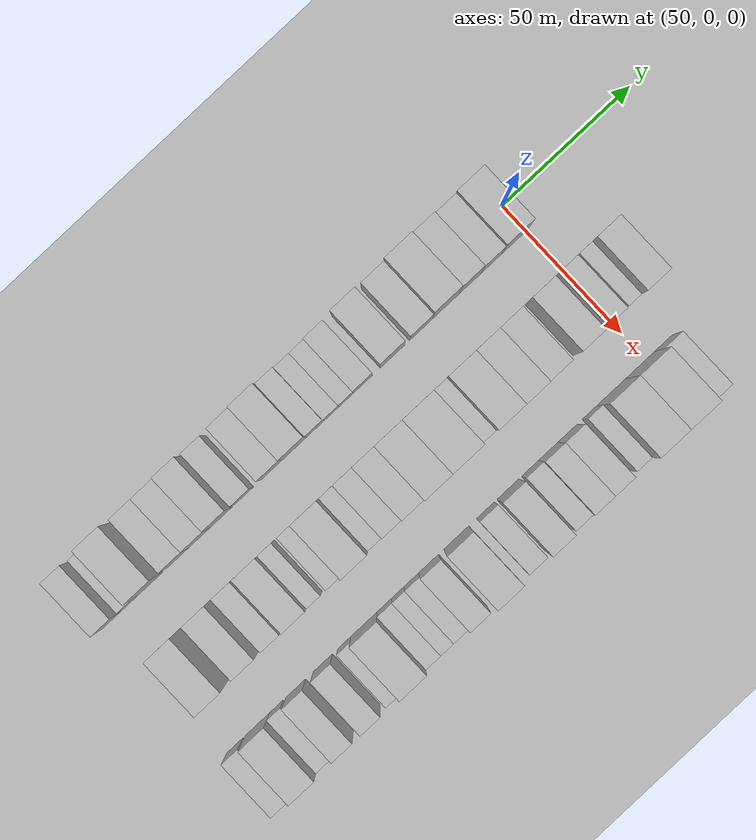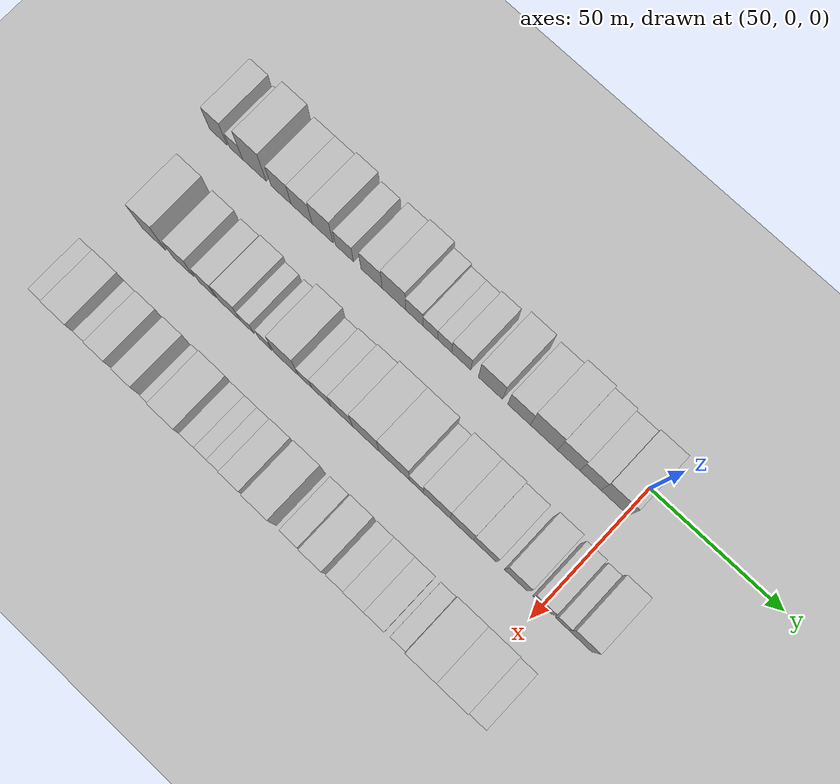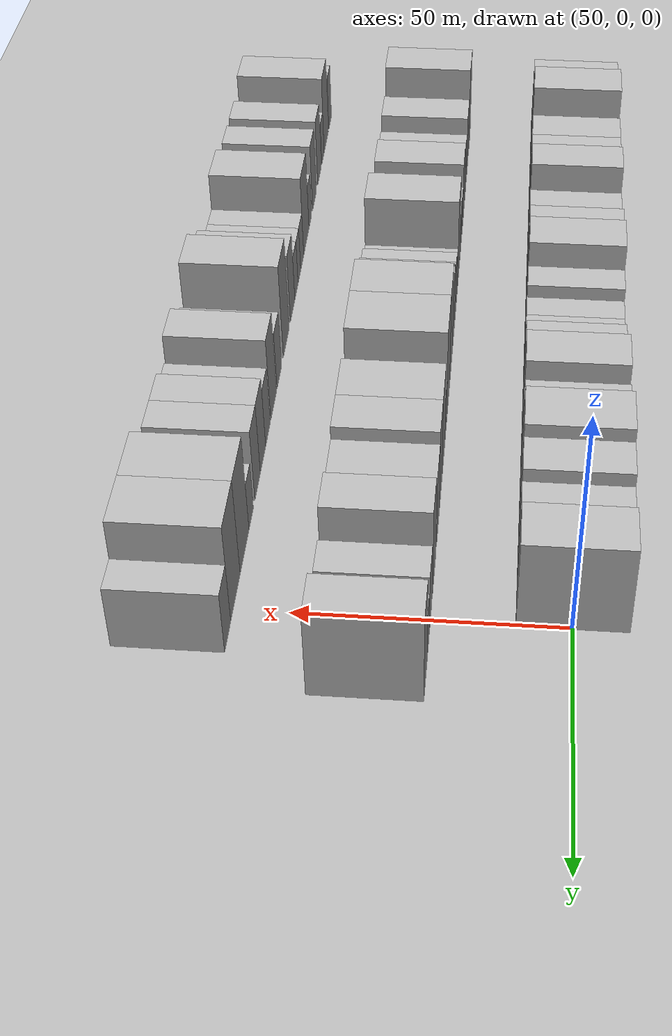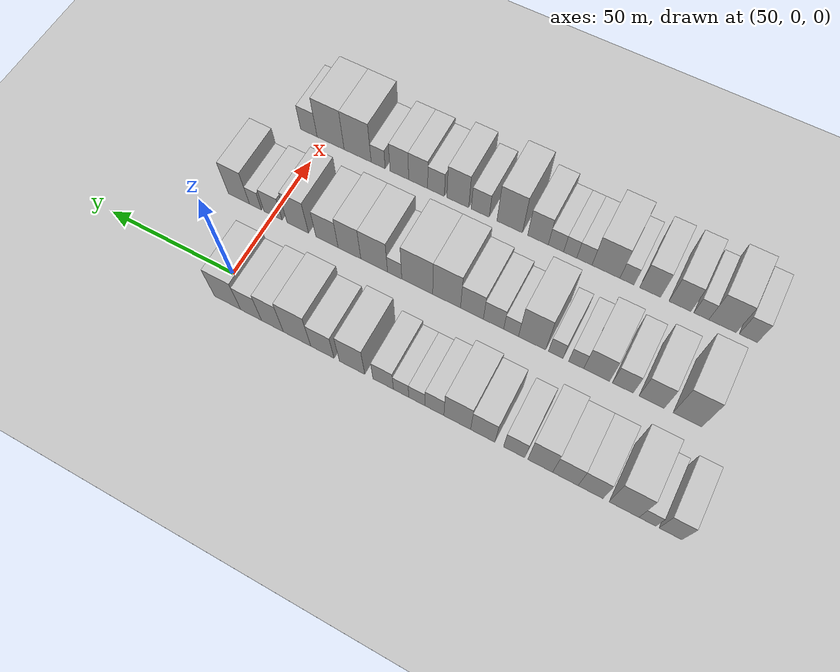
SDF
<sdf version="1.6">
 <world name="default">
  <include><name>ground_plane_1</name><uri>model://HANNAS_ground_plane</uri></include>
  <include>
   <name>ground_plane_2</name>
   <uri>model://HANNAS_ground_plane</uri>
   <pose>100 0 0  0 0 0</pose>
  </include>
  <model name="building_21">
   <static>1</static>
   <pose>50.0000 -161.7235 0 0.000000 0.000000 0.000000</pose>
   <link name="link">
    <pose>0 0 9.00 0 0 0</pose>
    <collision name="collision"><geometry><box><size>20.0000 7.2469 18.0000</size></box></geometry></collision>
    <visual name="visual">
     <cast_shadows>0</cast_shadows>
     <geometry><box><size>20.0000 7.2469 18.0000</size></box></geometry>
     <material>
      <script>
       <uri>model://HANNAS_wall/materials/scripts</uri>
       <uri>model://HANNAS_wall/materials/textures</uri>
       <name>vrc/HANNAS_wall</name>
      </script>
     </material>
    </visual>
   </link>
  </model>
  <model name="building_22">
   <static>1</static>
   <pose>50.0000 -154.3871 0 0.000000 0.000000 0.000000</pose>
   <link name="link">
    <pose>0 0 6.00 0 0 0</pose>
    <collision name="collision"><geometry><box><size>20.0000 5.4259 12.0000</size></box></geometry></collision>
    <visual name="visual">
     <cast_shadows>0</cast_shadows>
     <geometry><box><size>20.0000 5.4259 12.0000</size></box></geometry>
     <material>
      <script>
       <uri>model://HANNAS_wall/materials/scripts</uri>
       <uri>model://HANNAS_wall/materials/textures</uri>
       <name>vrc/HANNAS_wall</name>
      </script>
     </material>
    </visual>
   </link>
  </model>
  <model name="building_23">
   <static>1</static>
   <pose>50.0000 -146.8042 0 0.000000 0.000000 0.000000</pose>
   <link name="link">
    <pose>0 0 12.00 0 0 0</pose>
    <collision name="collision"><geometry><box><size>20.0000 9.7397 24.0000</size></box></geometry></collision>
    <visual name="visual">
     <cast_shadows>0</cast_shadows>
     <geometry><box><size>20.0000 9.7397 24.0000</size></box></geometry>
     <material>
      <script>
       <uri>model://HANNAS_wall/materials/scripts</uri>
       <uri>model://HANNAS_wall/materials/textures</uri>
       <name>vrc/HANNAS_wall</name>
      </script>
     </material>
    </visual>
   </link>
  </model>
  <model name="building_24">
   <static>1</static>
   <pose>50.0000 -135.8123 0 0.000000 0.000000 0.000000</pose>
   <link name="link">
    <pose>0 0 9.00 0 0 0</pose>
    <collision name="collision"><geometry><box><size>20.0000 8.2442 18.0000</size></box></geometry></collision>
    <visual name="visual">
     <cast_shadows>0</cast_shadows>
     <geometry><box><size>20.0000 8.2442 18.0000</size></box></geometry>
     <material>
      <script>
       <uri>model://HANNAS_wall/materials/scripts</uri>
       <uri>model://HANNAS_wall/materials/textures</uri>
       <name>vrc/HANNAS_wall</name>
      </script>
     </material>
    </visual>
   </link>
  </model>
  <model name="building_25">
   <static>1</static>
   <pose>50.0000 -127.4321 0 0.000000 0.000000 0.000000</pose>
   <link name="link">
    <pose>0 0 9.00 0 0 0</pose>
    <collision name="collision"><geometry><box><size>20.0000 8.5163 18.0000</size></box></geometry></collision>
    <visual name="visual">
     <cast_shadows>0</cast_shadows>
     <geometry><box><size>20.0000 8.5163 18.0000</size></box></geometry>
     <material>
      <script>
       <uri>model://HANNAS_wall/materials/scripts</uri>
       <uri>model://HANNAS_wall/materials/textures</uri>
       <name>vrc/HANNAS_wall</name>
      </script>
     </material>
    </visual>
   </link>
  </model>
  <model name="building_26">
   <static>1</static>
   <pose>50.0000 -118.9645 0 0.000000 0.000000 0.000000</pose>
   <link name="link">
    <pose>0 0 10.50 0 0 0</pose>
    <collision name="collision"><geometry><box><size>20.0000 8.4188 21.0000</size></box></geometry></collision>
    <visual name="visual">
     <cast_shadows>0</cast_shadows>
     <geometry><box><size>20.0000 8.4188 21.0000</size></box></geometry>
     <material>
      <script>
       <uri>model://HANNAS_wall/materials/scripts</uri>
       <uri>model://HANNAS_wall/materials/textures</uri>
       <name>vrc/HANNAS_wall</name>
      </script>
     </material>
    </visual>
   </link>
  </model>
  <model name="building_27">
   <static>1</static>
   <pose>50.0000 -110.1095 0 0.000000 0.000000 0.000000</pose>
   <link name="link">
    <pose>0 0 7.50 0 0 0</pose>
    <collision name="collision"><geometry><box><size>20.0000 7.2914 15.0000</size></box></geometry></collision>
    <visual name="visual">
     <cast_shadows>0</cast_shadows>
     <geometry><box><size>20.0000 7.2914 15.0000</size></box></geometry>
     <material>
      <script>
       <uri>model://HANNAS_wall/materials/scripts</uri>
       <uri>model://HANNAS_wall/materials/textures</uri>
       <name>vrc/HANNAS_wall</name>
      </script>
     </material>
    </visual>
   </link>
  </model>
  <model name="building_28">
   <static>1</static>
   <pose>50.0000 -99.2491 0 0.000000 0.000000 0.000000</pose>
   <link name="link">
    <pose>0 0 9.00 0 0 0</pose>
    <collision name="collision"><geometry><box><size>20.0000 8.4293 18.0000</size></box></geometry></collision>
    <visual name="visual">
     <cast_shadows>0</cast_shadows>
     <geometry><box><size>20.0000 8.4293 18.0000</size></box></geometry>
     <material>
      <script>
       <uri>model://HANNAS_wall/materials/scripts</uri>
       <uri>model://HANNAS_wall/materials/textures</uri>
       <name>vrc/HANNAS_wall</name>
      </script>
     </material>
    </visual>
   </link>
  </model>
  <model name="building_29">
   <static>1</static>
   <pose>50.0000 -90.3243 0 0.000000 0.000000 0.000000</pose>
   <link name="link">
    <pose>0 0 10.50 0 0 0</pose>
    <collision name="collision"><geometry><box><size>20.0000 9.4204 21.0000</size></box></geometry></collision>
    <visual name="visual">
     <cast_shadows>0</cast_shadows>
     <geometry><box><size>20.0000 9.4204 21.0000</size></box></geometry>
     <material>
      <script>
       <uri>model://HANNAS_wall/materials/scripts</uri>
       <uri>model://HANNAS_wall/materials/textures</uri>
       <name>vrc/HANNAS_wall</name>
      </script>
     </material>
    </visual>
   </link>
  </model>
  <model name="building_30">
   <static>1</static>
   <pose>50.0000 -82.2575 0 0.000000 0.000000 0.000000</pose>
   <link name="link">
    <pose>0 0 7.50 0 0 0</pose>
    <collision name="collision"><geometry><box><size>20.0000 6.7132 15.0000</size></box></geometry></collision>
    <visual name="visual">
     <cast_shadows>0</cast_shadows>
     <geometry><box><size>20.0000 6.7132 15.0000</size></box></geometry>
     <material>
      <script>
       <uri>model://HANNAS_wall/materials/scripts</uri>
       <uri>model://HANNAS_wall/materials/textures</uri>
       <name>vrc/HANNAS_wall</name>
      </script>
     </material>
    </visual>
   </link>
  </model>
  <model name="building_31">
   <static>1</static>
   <pose>50.0000 -75.9709 0 0.000000 0.000000 0.000000</pose>
   <link name="link">
    <pose>0 0 6.00 0 0 0</pose>
    <collision name="collision"><geometry><box><size>20.0000 5.8601 12.0000</size></box></geometry></collision>
    <visual name="visual">
     <cast_shadows>0</cast_shadows>
     <geometry><box><size>20.0000 5.8601 12.0000</size></box></geometry>
     <material>
      <script>
       <uri>model://HANNAS_wall/materials/scripts</uri>
       <uri>model://HANNAS_wall/materials/textures</uri>
       <name>vrc/HANNAS_wall</name>
      </script>
     </material>
    </visual>
   </link>
  </model>
  <model name="building_32">
   <static>1</static>
   <pose>50.0000 -70.2673 0 0.000000 0.000000 0.000000</pose>
   <link name="link">
    <pose>0 0 6.00 0 0 0</pose>
    <collision name="collision"><geometry><box><size>20.0000 5.5470 12.0000</size></box></geometry></collision>
    <visual name="visual">
     <cast_shadows>0</cast_shadows>
     <geometry><box><size>20.0000 5.5470 12.0000</size></box></geometry>
     <material>
      <script>
       <uri>model://HANNAS_wall/materials/scripts</uri>
       <uri>model://HANNAS_wall/materials/textures</uri>
       <name>vrc/HANNAS_wall</name>
      </script>
     </material>
    </visual>
   </link>
  </model>
  <model name="building_33">
   <static>1</static>
   <pose>50.0000 -63.7525 0 0.000000 0.000000 0.000000</pose>
   <link name="link">
    <pose>0 0 7.50 0 0 0</pose>
    <collision name="collision"><geometry><box><size>20.0000 7.4826 15.0000</size></box></geometry></collision>
    <visual name="visual">
     <cast_shadows>0</cast_shadows>
     <geometry><box><size>20.0000 7.4826 15.0000</size></box></geometry>
     <material>
      <script>
       <uri>model://HANNAS_wall/materials/scripts</uri>
       <uri>model://HANNAS_wall/materials/textures</uri>
       <name>vrc/HANNAS_wall</name>
      </script>
     </material>
    </visual>
   </link>
  </model>
  <model name="building_34">
   <static>1</static>
   <pose>50.0000 -52.3097 0 0.000000 0.000000 0.000000</pose>
   <link name="link">
    <pose>0 0 10.50 0 0 0</pose>
    <collision name="collision"><geometry><box><size>20.0000 9.4031 21.0000</size></box></geometry></collision>
    <visual name="visual">
     <cast_shadows>0</cast_shadows>
     <geometry><box><size>20.0000 9.4031 21.0000</size></box></geometry>
     <material>
      <script>
       <uri>model://HANNAS_wall/materials/scripts</uri>
       <uri>model://HANNAS_wall/materials/textures</uri>
       <name>vrc/HANNAS_wall</name>
      </script>
     </material>
    </visual>
   </link>
  </model>
  <model name="building_35">
   <static>1</static>
   <pose>50.0000 -41.2139 0 0.000000 0.000000 0.000000</pose>
   <link name="link">
    <pose>0 0 9.00 0 0 0</pose>
    <collision name="collision"><geometry><box><size>20.0000 8.7885 18.0000</size></box></geometry></collision>
    <visual name="visual">
     <cast_shadows>0</cast_shadows>
     <geometry><box><size>20.0000 8.7885 18.0000</size></box></geometry>
     <material>
      <script>
       <uri>model://HANNAS_wall/materials/scripts</uri>
       <uri>model://HANNAS_wall/materials/textures</uri>
       <name>vrc/HANNAS_wall</name>
      </script>
     </material>
    </visual>
   </link>
  </model>
  <model name="building_36">
   <static>1</static>
   <pose>50.0000 -31.5772 0 0.000000 0.000000 0.000000</pose>
   <link name="link">
    <pose>0 0 12.00 0 0 0</pose>
    <collision name="collision"><geometry><box><size>20.0000 10.4849 24.0000</size></box></geometry></collision>
    <visual name="visual">
     <cast_shadows>0</cast_shadows>
     <geometry><box><size>20.0000 10.4849 24.0000</size></box></geometry>
     <material>
      <script>
       <uri>model://HANNAS_wall/materials/scripts</uri>
       <uri>model://HANNAS_wall/materials/textures</uri>
       <name>vrc/HANNAS_wall</name>
      </script>
     </material>
    </visual>
   </link>
  </model>
  <model name="building_37">
   <static>1</static>
   <pose>50.0000 -22.1295 0 0.000000 0.000000 0.000000</pose>
   <link name="link">
    <pose>0 0 10.50 0 0 0</pose>
    <collision name="collision"><geometry><box><size>20.0000 8.4103 21.0000</size></box></geometry></collision>
    <visual name="visual">
     <cast_shadows>0</cast_shadows>
     <geometry><box><size>20.0000 8.4103 21.0000</size></box></geometry>
     <material>
      <script>
       <uri>model://HANNAS_wall/materials/scripts</uri>
       <uri>model://HANNAS_wall/materials/textures</uri>
       <name>vrc/HANNAS_wall</name>
      </script>
     </material>
    </visual>
   </link>
  </model>
  <model name="building_38">
   <static>1</static>
   <pose>50.0000 -13.8423 0 0.000000 0.000000 0.000000</pose>
   <link name="link">
    <pose>0 0 9.00 0 0 0</pose>
    <collision name="collision"><geometry><box><size>20.0000 8.1641 18.0000</size></box></geometry></collision>
    <visual name="visual">
     <cast_shadows>0</cast_shadows>
     <geometry><box><size>20.0000 8.1641 18.0000</size></box></geometry>
     <material>
      <script>
       <uri>model://HANNAS_wall/materials/scripts</uri>
       <uri>model://HANNAS_wall/materials/textures</uri>
       <name>vrc/HANNAS_wall</name>
      </script>
     </material>
    </visual>
   </link>
  </model>
  <model name="building_39">
   <static>1</static>
   <pose>50.0000 -4.5751 0 0.000000 0.000000 0.000000</pose>
   <link name="link">
    <pose>0 0 10.50 0 0 0</pose>
    <collision name="collision"><geometry><box><size>20.0000 10.3705 21.0000</size></box></geometry></collision>
    <visual name="visual">
     <cast_shadows>0</cast_shadows>
     <geometry><box><size>20.0000 10.3705 21.0000</size></box></geometry>
     <material>
      <script>
       <uri>model://HANNAS_wall/materials/scripts</uri>
       <uri>model://HANNAS_wall/materials/textures</uri>
       <name>vrc/HANNAS_wall</name>
      </script>
     </material>
    </visual>
   </link>
  </model>
  <model name="building_101">
   <static>1</static>
   <pose>85.0000 -153.3951 0 0.000000 0.000000 0.000000</pose>
   <link name="link">
    <pose>0 0 12.00 0 0 0</pose>
    <collision name="collision"><geometry><box><size>20.0000 9.6133 24.0000</size></box></geometry></collision>
    <visual name="visual">
     <cast_shadows>0</cast_shadows>
     <geometry><box><size>20.0000 9.6133 24.0000</size></box></geometry>
     <material>
      <script>
       <uri>model://HANNAS_wall/materials/scripts</uri>
       <uri>model://HANNAS_wall/materials/textures</uri>
       <name>vrc/HANNAS_wall</name>
      </script>
     </material>
    </visual>
   </link>
  </model>
  <model name="building_102">
   <static>1</static>
   <pose>85.0000 -141.3218 0 0.000000 0.000000 0.000000</pose>
   <link name="link">
    <pose>0 0 9.00 0 0 0</pose>
    <collision name="collision"><geometry><box><size>20.0000 8.5334 18.0000</size></box></geometry></collision>
    <visual name="visual">
     <cast_shadows>0</cast_shadows>
     <geometry><box><size>20.0000 8.5334 18.0000</size></box></geometry>
     <material>
      <script>
       <uri>model://HANNAS_wall/materials/scripts</uri>
       <uri>model://HANNAS_wall/materials/textures</uri>
       <name>vrc/HANNAS_wall</name>
      </script>
     </material>
    </visual>
   </link>
  </model>
  <model name="building_103">
   <static>1</static>
   <pose>85.0000 -131.4717 0 0.000000 0.000000 0.000000</pose>
   <link name="link">
    <pose>0 0 7.50 0 0 0</pose>
    <collision name="collision"><geometry><box><size>20.0000 7.1668 15.0000</size></box></geometry></collision>
    <visual name="visual">
     <cast_shadows>0</cast_shadows>
     <geometry><box><size>20.0000 7.1668 15.0000</size></box></geometry>
     <material>
      <script>
       <uri>model://HANNAS_wall/materials/scripts</uri>
       <uri>model://HANNAS_wall/materials/textures</uri>
       <name>vrc/HANNAS_wall</name>
      </script>
     </material>
    </visual>
   </link>
  </model>
  <model name="building_104">
   <static>1</static>
   <pose>85.0000 -122.4098 0 0.000000 0.000000 0.000000</pose>
   <link name="link">
    <pose>0 0 9.00 0 0 0</pose>
    <collision name="collision"><geometry><box><size>20.0000 8.9569 18.0000</size></box></geometry></collision>
    <visual name="visual">
     <cast_shadows>0</cast_shadows>
     <geometry><box><size>20.0000 8.9569 18.0000</size></box></geometry>
     <material>
      <script>
       <uri>model://HANNAS_wall/materials/scripts</uri>
       <uri>model://HANNAS_wall/materials/textures</uri>
       <name>vrc/HANNAS_wall</name>
      </script>
     </material>
    </visual>
   </link>
  </model>
  <model name="building_105">
   <static>1</static>
   <pose>85.0000 -115.2569 0 0.000000 0.000000 0.000000</pose>
   <link name="link">
    <pose>0 0 6.00 0 0 0</pose>
    <collision name="collision"><geometry><box><size>20.0000 5.3489 12.0000</size></box></geometry></collision>
    <visual name="visual">
     <cast_shadows>0</cast_shadows>
     <geometry><box><size>20.0000 5.3489 12.0000</size></box></geometry>
     <material>
      <script>
       <uri>model://HANNAS_wall/materials/scripts</uri>
       <uri>model://HANNAS_wall/materials/textures</uri>
       <name>vrc/HANNAS_wall</name>
      </script>
     </material>
    </visual>
   </link>
  </model>
  <model name="building_106">
   <static>1</static>
   <pose>85.0000 -107.9996 0 0.000000 0.000000 0.000000</pose>
   <link name="link">
    <pose>0 0 6.00 0 0 0</pose>
    <collision name="collision"><geometry><box><size>20.0000 5.1656 12.0000</size></box></geometry></collision>
    <visual name="visual">
     <cast_shadows>0</cast_shadows>
     <geometry><box><size>20.0000 5.1656 12.0000</size></box></geometry>
     <material>
      <script>
       <uri>model://HANNAS_wall/materials/scripts</uri>
       <uri>model://HANNAS_wall/materials/textures</uri>
       <name>vrc/HANNAS_wall</name>
      </script>
     </material>
    </visual>
   </link>
  </model>
  <model name="building_107">
   <static>1</static>
   <pose>85.0000 -99.5205 0 0.000000 0.000000 0.000000</pose>
   <link name="link">
    <pose>0 0 12.00 0 0 0</pose>
    <collision name="collision"><geometry><box><size>20.0000 9.7926 24.0000</size></box></geometry></collision>
    <visual name="visual">
     <cast_shadows>0</cast_shadows>
     <geometry><box><size>20.0000 9.7926 24.0000</size></box></geometry>
     <material>
      <script>
       <uri>model://HANNAS_wall/materials/scripts</uri>
       <uri>model://HANNAS_wall/materials/textures</uri>
       <name>vrc/HANNAS_wall</name>
      </script>
     </material>
    </visual>
   </link>
  </model>
  <model name="building_108">
   <static>1</static>
   <pose>85.0000 -91.9292 0 0.000000 0.000000 0.000000</pose>
   <link name="link">
    <pose>0 0 6.00 0 0 0</pose>
    <collision name="collision"><geometry><box><size>20.0000 5.3900 12.0000</size></box></geometry></collision>
    <visual name="visual">
     <cast_shadows>0</cast_shadows>
     <geometry><box><size>20.0000 5.3900 12.0000</size></box></geometry>
     <material>
      <script>
       <uri>model://HANNAS_wall/materials/scripts</uri>
       <uri>model://HANNAS_wall/materials/textures</uri>
       <name>vrc/HANNAS_wall</name>
      </script>
     </material>
    </visual>
   </link>
  </model>
  <model name="building_109">
   <static>1</static>
   <pose>85.0000 -85.5301 0 0.000000 0.000000 0.000000</pose>
   <link name="link">
    <pose>0 0 7.50 0 0 0</pose>
    <collision name="collision"><geometry><box><size>20.0000 7.4082 15.0000</size></box></geometry></collision>
    <visual name="visual">
     <cast_shadows>0</cast_shadows>
     <geometry><box><size>20.0000 7.4082 15.0000</size></box></geometry>
     <material>
      <script>
       <uri>model://HANNAS_wall/materials/scripts</uri>
       <uri>model://HANNAS_wall/materials/textures</uri>
       <name>vrc/HANNAS_wall</name>
      </script>
     </material>
    </visual>
   </link>
  </model>
  <model name="building_110">
   <static>1</static>
   <pose>85.0000 -77.5887 0 0.000000 0.000000 0.000000</pose>
   <link name="link">
    <pose>0 0 9.00 0 0 0</pose>
    <collision name="collision"><geometry><box><size>20.0000 8.4746 18.0000</size></box></geometry></collision>
    <visual name="visual">
     <cast_shadows>0</cast_shadows>
     <geometry><box><size>20.0000 8.4746 18.0000</size></box></geometry>
     <material>
      <script>
       <uri>model://HANNAS_wall/materials/scripts</uri>
       <uri>model://HANNAS_wall/materials/textures</uri>
       <name>vrc/HANNAS_wall</name>
      </script>
     </material>
    </visual>
   </link>
  </model>
  <model name="building_111">
   <static>1</static>
   <pose>85.0000 -68.1394 0 0.000000 0.000000 0.000000</pose>
   <link name="link">
    <pose>0 0 12.00 0 0 0</pose>
    <collision name="collision"><geometry><box><size>20.0000 10.4241 24.0000</size></box></geometry></collision>
    <visual name="visual">
     <cast_shadows>0</cast_shadows>
     <geometry><box><size>20.0000 10.4241 24.0000</size></box></geometry>
     <material>
      <script>
       <uri>model://HANNAS_wall/materials/scripts</uri>
       <uri>model://HANNAS_wall/materials/textures</uri>
       <name>vrc/HANNAS_wall</name>
      </script>
     </material>
    </visual>
   </link>
  </model>
  <model name="building_112">
   <static>1</static>
   <pose>85.0000 -57.0421 0 0.000000 0.000000 0.000000</pose>
   <link name="link">
    <pose>0 0 12.00 0 0 0</pose>
    <collision name="collision"><geometry><box><size>20.0000 11.7704 24.0000</size></box></geometry></collision>
    <visual name="visual">
     <cast_shadows>0</cast_shadows>
     <geometry><box><size>20.0000 11.7704 24.0000</size></box></geometry>
     <material>
      <script>
       <uri>model://HANNAS_wall/materials/scripts</uri>
       <uri>model://HANNAS_wall/materials/textures</uri>
       <name>vrc/HANNAS_wall</name>
      </script>
     </material>
    </visual>
   </link>
  </model>
  <model name="building_113">
   <static>1</static>
   <pose>85.0000 -48.4250 0 0.000000 0.000000 0.000000</pose>
   <link name="link">
    <pose>0 0 6.00 0 0 0</pose>
    <collision name="collision"><geometry><box><size>20.0000 5.4638 12.0000</size></box></geometry></collision>
    <visual name="visual">
     <cast_shadows>0</cast_shadows>
     <geometry><box><size>20.0000 5.4638 12.0000</size></box></geometry>
     <material>
      <script>
       <uri>model://HANNAS_wall/materials/scripts</uri>
       <uri>model://HANNAS_wall/materials/textures</uri>
       <name>vrc/HANNAS_wall</name>
      </script>
     </material>
    </visual>
   </link>
  </model>
  <model name="building_114">
   <static>1</static>
   <pose>85.0000 -40.5048 0 0.000000 0.000000 0.000000</pose>
   <link name="link">
    <pose>0 0 10.50 0 0 0</pose>
    <collision name="collision"><geometry><box><size>20.0000 10.3767 21.0000</size></box></geometry></collision>
    <visual name="visual">
     <cast_shadows>0</cast_shadows>
     <geometry><box><size>20.0000 10.3767 21.0000</size></box></geometry>
     <material>
      <script>
       <uri>model://HANNAS_wall/materials/scripts</uri>
       <uri>model://HANNAS_wall/materials/textures</uri>
       <name>vrc/HANNAS_wall</name>
      </script>
     </material>
    </visual>
   </link>
  </model>
  <model name="building_115">
   <static>1</static>
   <pose>85.0000 -30.8536 0 0.000000 0.000000 0.000000</pose>
   <link name="link">
    <pose>0 0 10.50 0 0 0</pose>
    <collision name="collision"><geometry><box><size>20.0000 8.9258 21.0000</size></box></geometry></collision>
    <visual name="visual">
     <cast_shadows>0</cast_shadows>
     <geometry><box><size>20.0000 8.9258 21.0000</size></box></geometry>
     <material>
      <script>
       <uri>model://HANNAS_wall/materials/scripts</uri>
       <uri>model://HANNAS_wall/materials/textures</uri>
       <name>vrc/HANNAS_wall</name>
      </script>
     </material>
    </visual>
   </link>
  </model>
  <model name="building_116">
   <static>1</static>
   <pose>85.0000 -21.9672 0 0.000000 0.000000 0.000000</pose>
   <link name="link">
    <pose>0 0 9.00 0 0 0</pose>
    <collision name="collision"><geometry><box><size>20.0000 8.8468 18.0000</size></box></geometry></collision>
    <visual name="visual">
     <cast_shadows>0</cast_shadows>
     <geometry><box><size>20.0000 8.8468 18.0000</size></box></geometry>
     <material>
      <script>
       <uri>model://HANNAS_wall/materials/scripts</uri>
       <uri>model://HANNAS_wall/materials/textures</uri>
       <name>vrc/HANNAS_wall</name>
      </script>
     </material>
    </visual>
   </link>
  </model>
  <model name="building_117">
   <static>1</static>
   <pose>85.0000 -10.2096 0 0.000000 0.000000 0.000000</pose>
   <link name="link">
    <pose>0 0 10.50 0 0 0</pose>
    <collision name="collision"><geometry><box><size>20.0000 8.6684 21.0000</size></box></geometry></collision>
    <visual name="visual">
     <cast_shadows>0</cast_shadows>
     <geometry><box><size>20.0000 8.6684 21.0000</size></box></geometry>
     <material>
      <script>
       <uri>model://HANNAS_wall/materials/scripts</uri>
       <uri>model://HANNAS_wall/materials/textures</uri>
       <name>vrc/HANNAS_wall</name>
      </script>
     </material>
    </visual>
   </link>
  </model>
  <model name="building_118">
   <static>1</static>
   <pose>85.0000 -0.1540 0 0.000000 0.000000 0.000000</pose>
   <link name="link">
    <pose>0 0 7.50 0 0 0</pose>
    <collision name="collision"><geometry><box><size>20.0000 7.4429 15.0000</size></box></geometry></collision>
    <visual name="visual">
     <cast_shadows>0</cast_shadows>
     <geometry><box><size>20.0000 7.4429 15.0000</size></box></geometry>
     <material>
      <script>
       <uri>model://HANNAS_wall/materials/scripts</uri>
       <uri>model://HANNAS_wall/materials/textures</uri>
       <name>vrc/HANNAS_wall</name>
      </script>
     </material>
    </visual>
   </link>
  </model>
  <model name="building_119">
   <static>1</static>
   <pose>85.0000 7.0449 0 0.000000 0.000000 0.000000</pose>
   <link name="link">
    <pose>0 0 6.00 0 0 0</pose>
    <collision name="collision"><geometry><box><size>20.0000 4.9548 12.0000</size></box></geometry></collision>
    <visual name="visual">
     <cast_shadows>0</cast_shadows>
     <geometry><box><size>20.0000 4.9548 12.0000</size></box></geometry>
     <material>
      <script>
       <uri>model://HANNAS_wall/materials/scripts</uri>
       <uri>model://HANNAS_wall/materials/textures</uri>
       <name>vrc/HANNAS_wall</name>
      </script>
     </material>
    </visual>
   </link>
  </model>
  <model name="building_120">
   <static>1</static>
   <pose>85.0000 13.9249 0 0.000000 0.000000 0.000000</pose>
   <link name="link">
    <pose>0 0 10.50 0 0 0</pose>
    <collision name="collision"><geometry><box><size>20.0000 8.8051 21.0000</size></box></geometry></collision>
    <visual name="visual">
     <cast_shadows>0</cast_shadows>
     <geometry><box><size>20.0000 8.8051 21.0000</size></box></geometry>
     <material>
      <script>
       <uri>model://HANNAS_wall/materials/scripts</uri>
       <uri>model://HANNAS_wall/materials/textures</uri>
       <name>vrc/HANNAS_wall</name>
      </script>
     </material>
    </visual>
   </link>
  </model>
  <model name="building_182">
   <static>1</static>
   <pose>120.0000 -160.8313 0 0.000000 0.000000 0.000000</pose>
   <link name="link">
    <pose>0 0 7.50 0 0 0</pose>
    <collision name="collision"><geometry><box><size>20.0000 6.2709 15.0000</size></box></geometry></collision>
    <visual name="visual">
     <cast_shadows>0</cast_shadows>
     <geometry><box><size>20.0000 6.2709 15.0000</size></box></geometry>
     <material>
      <script>
       <uri>model://HANNAS_wall/materials/scripts</uri>
       <uri>model://HANNAS_wall/materials/textures</uri>
       <name>vrc/HANNAS_wall</name>
      </script>
     </material>
    </visual>
   </link>
  </model>
  <model name="building_183">
   <static>1</static>
   <pose>120.0000 -151.9282 0 0.000000 0.000000 0.000000</pose>
   <link name="link">
    <pose>0 0 10.50 0 0 0</pose>
    <collision name="collision"><geometry><box><size>20.0000 9.5353 21.0000</size></box></geometry></collision>
    <visual name="visual">
     <cast_shadows>0</cast_shadows>
     <geometry><box><size>20.0000 9.5353 21.0000</size></box></geometry>
     <material>
      <script>
       <uri>model://HANNAS_wall/materials/scripts</uri>
       <uri>model://HANNAS_wall/materials/textures</uri>
       <name>vrc/HANNAS_wall</name>
      </script>
     </material>
    </visual>
   </link>
  </model>
  <model name="building_184">
   <static>1</static>
   <pose>120.0000 -144.5488 0 0.000000 0.000000 0.000000</pose>
   <link name="link">
    <pose>0 0 6.00 0 0 0</pose>
    <collision name="collision"><geometry><box><size>20.0000 5.2235 12.0000</size></box></geometry></collision>
    <visual name="visual">
     <cast_shadows>0</cast_shadows>
     <geometry><box><size>20.0000 5.2235 12.0000</size></box></geometry>
     <material>
      <script>
       <uri>model://HANNAS_wall/materials/scripts</uri>
       <uri>model://HANNAS_wall/materials/textures</uri>
       <name>vrc/HANNAS_wall</name>
      </script>
     </material>
    </visual>
   </link>
  </model>
  <model name="building_185">
   <static>1</static>
   <pose>120.0000 -137.0495 0 0.000000 0.000000 0.000000</pose>
   <link name="link">
    <pose>0 0 9.00 0 0 0</pose>
    <collision name="collision"><geometry><box><size>20.0000 7.7749 18.0000</size></box></geometry></collision>
    <visual name="visual">
     <cast_shadows>0</cast_shadows>
     <geometry><box><size>20.0000 7.7749 18.0000</size></box></geometry>
     <material>
      <script>
       <uri>model://HANNAS_wall/materials/scripts</uri>
       <uri>model://HANNAS_wall/materials/textures</uri>
       <name>vrc/HANNAS_wall</name>
      </script>
     </material>
    </visual>
   </link>
  </model>
  <model name="building_186">
   <static>1</static>
   <pose>120.0000 -126.4019 0 0.000000 0.000000 0.000000</pose>
   <link name="link">
    <pose>0 0 9.00 0 0 0</pose>
    <collision name="collision"><geometry><box><size>20.0000 7.5203 18.0000</size></box></geometry></collision>
    <visual name="visual">
     <cast_shadows>0</cast_shadows>
     <geometry><box><size>20.0000 7.5203 18.0000</size></box></geometry>
     <material>
      <script>
       <uri>model://HANNAS_wall/materials/scripts</uri>
       <uri>model://HANNAS_wall/materials/textures</uri>
       <name>vrc/HANNAS_wall</name>
      </script>
     </material>
    </visual>
   </link>
  </model>
  <model name="building_187">
   <static>1</static>
   <pose>120.0000 -118.0832 0 0.000000 0.000000 0.000000</pose>
   <link name="link">
    <pose>0 0 6.00 0 0 0</pose>
    <collision name="collision"><geometry><box><size>20.0000 5.1172 12.0000</size></box></geometry></collision>
    <visual name="visual">
     <cast_shadows>0</cast_shadows>
     <geometry><box><size>20.0000 5.1172 12.0000</size></box></geometry>
     <material>
      <script>
       <uri>model://HANNAS_wall/materials/scripts</uri>
       <uri>model://HANNAS_wall/materials/textures</uri>
       <name>vrc/HANNAS_wall</name>
      </script>
     </material>
    </visual>
   </link>
  </model>
  <model name="building_188">
   <static>1</static>
   <pose>120.0000 -110.4106 0 0.000000 0.000000 0.000000</pose>
   <link name="link">
    <pose>0 0 10.50 0 0 0</pose>
    <collision name="collision"><geometry><box><size>20.0000 10.2279 21.0000</size></box></geometry></collision>
    <visual name="visual">
     <cast_shadows>0</cast_shadows>
     <geometry><box><size>20.0000 10.2279 21.0000</size></box></geometry>
     <material>
      <script>
       <uri>model://HANNAS_wall/materials/scripts</uri>
       <uri>model://HANNAS_wall/materials/textures</uri>
       <name>vrc/HANNAS_wall</name>
      </script>
     </material>
    </visual>
   </link>
  </model>
  <model name="building_189">
   <static>1</static>
   <pose>120.0000 -102.4725 0 0.000000 0.000000 0.000000</pose>
   <link name="link">
    <pose>0 0 6.00 0 0 0</pose>
    <collision name="collision"><geometry><box><size>20.0000 5.6483 12.0000</size></box></geometry></collision>
    <visual name="visual">
     <cast_shadows>0</cast_shadows>
     <geometry><box><size>20.0000 5.6483 12.0000</size></box></geometry>
     <material>
      <script>
       <uri>model://HANNAS_wall/materials/scripts</uri>
       <uri>model://HANNAS_wall/materials/textures</uri>
       <name>vrc/HANNAS_wall</name>
      </script>
     </material>
    </visual>
   </link>
  </model>
  <model name="building_190">
   <static>1</static>
   <pose>120.0000 -97.2037 0 0.000000 0.000000 0.000000</pose>
   <link name="link">
    <pose>0 0 6.00 0 0 0</pose>
    <collision name="collision"><geometry><box><size>20.0000 4.8894 12.0000</size></box></geometry></collision>
    <visual name="visual">
     <cast_shadows>0</cast_shadows>
     <geometry><box><size>20.0000 4.8894 12.0000</size></box></geometry>
     <material>
      <script>
       <uri>model://HANNAS_wall/materials/scripts</uri>
       <uri>model://HANNAS_wall/materials/textures</uri>
       <name>vrc/HANNAS_wall</name>
      </script>
     </material>
    </visual>
   </link>
  </model>
  <model name="building_191">
   <static>1</static>
   <pose>120.0000 -91.8717 0 0.000000 0.000000 0.000000</pose>
   <link name="link">
    <pose>0 0 6.00 0 0 0</pose>
    <collision name="collision"><geometry><box><size>20.0000 5.7746 12.0000</size></box></geometry></collision>
    <visual name="visual">
     <cast_shadows>0</cast_shadows>
     <geometry><box><size>20.0000 5.7746 12.0000</size></box></geometry>
     <material>
      <script>
       <uri>model://HANNAS_wall/materials/scripts</uri>
       <uri>model://HANNAS_wall/materials/textures</uri>
       <name>vrc/HANNAS_wall</name>
      </script>
     </material>
    </visual>
   </link>
  </model>
  <model name="building_192">
   <static>1</static>
   <pose>120.0000 -85.0903 0 0.000000 0.000000 0.000000</pose>
   <link name="link">
    <pose>0 0 9.00 0 0 0</pose>
    <collision name="collision"><geometry><box><size>20.0000 7.7881 18.0000</size></box></geometry></collision>
    <visual name="visual">
     <cast_shadows>0</cast_shadows>
     <geometry><box><size>20.0000 7.7881 18.0000</size></box></geometry>
     <material>
      <script>
       <uri>model://HANNAS_wall/materials/scripts</uri>
       <uri>model://HANNAS_wall/materials/textures</uri>
       <name>vrc/HANNAS_wall</name>
      </script>
     </material>
    </visual>
   </link>
  </model>
  <model name="building_193">
   <static>1</static>
   <pose>120.0000 -74.3013 0 0.000000 0.000000 0.000000</pose>
   <link name="link">
    <pose>0 0 12.00 0 0 0</pose>
    <collision name="collision"><geometry><box><size>20.0000 9.7899 24.0000</size></box></geometry></collision>
    <visual name="visual">
     <cast_shadows>0</cast_shadows>
     <geometry><box><size>20.0000 9.7899 24.0000</size></box></geometry>
     <material>
      <script>
       <uri>model://HANNAS_wall/materials/scripts</uri>
       <uri>model://HANNAS_wall/materials/textures</uri>
       <name>vrc/HANNAS_wall</name>
      </script>
     </material>
    </visual>
   </link>
  </model>
  <model name="building_194">
   <static>1</static>
   <pose>120.0000 -62.9186 0 0.000000 0.000000 0.000000</pose>
   <link name="link">
    <pose>0 0 7.50 0 0 0</pose>
    <collision name="collision"><geometry><box><size>20.0000 6.9753 15.0000</size></box></geometry></collision>
    <visual name="visual">
     <cast_shadows>0</cast_shadows>
     <geometry><box><size>20.0000 6.9753 15.0000</size></box></geometry>
     <material>
      <script>
       <uri>model://HANNAS_wall/materials/scripts</uri>
       <uri>model://HANNAS_wall/materials/textures</uri>
       <name>vrc/HANNAS_wall</name>
      </script>
     </material>
    </visual>
   </link>
  </model>
  <model name="building_195">
   <static>1</static>
   <pose>120.0000 -54.1456 0 0.000000 0.000000 0.000000</pose>
   <link name="link">
    <pose>0 0 10.50 0 0 0</pose>
    <collision name="collision"><geometry><box><size>20.0000 8.5708 21.0000</size></box></geometry></collision>
    <visual name="visual">
     <cast_shadows>0</cast_shadows>
     <geometry><box><size>20.0000 8.5708 21.0000</size></box></geometry>
     <material>
      <script>
       <uri>model://HANNAS_wall/materials/scripts</uri>
       <uri>model://HANNAS_wall/materials/textures</uri>
       <name>vrc/HANNAS_wall</name>
      </script>
     </material>
    </visual>
   </link>
  </model>
  <model name="building_196">
   <static>1</static>
   <pose>120.0000 -45.5496 0 0.000000 0.000000 0.000000</pose>
   <link name="link">
    <pose>0 0 7.50 0 0 0</pose>
    <collision name="collision"><geometry><box><size>20.0000 6.6212 15.0000</size></box></geometry></collision>
    <visual name="visual">
     <cast_shadows>0</cast_shadows>
     <geometry><box><size>20.0000 6.6212 15.0000</size></box></geometry>
     <material>
      <script>
       <uri>model://HANNAS_wall/materials/scripts</uri>
       <uri>model://HANNAS_wall/materials/textures</uri>
       <name>vrc/HANNAS_wall</name>
      </script>
     </material>
    </visual>
   </link>
  </model>
  <model name="building_197">
   <static>1</static>
   <pose>120.0000 -38.4181 0 0.000000 0.000000 0.000000</pose>
   <link name="link">
    <pose>0 0 9.00 0 0 0</pose>
    <collision name="collision"><geometry><box><size>20.0000 7.6419 18.0000</size></box></geometry></collision>
    <visual name="visual">
     <cast_shadows>0</cast_shadows>
     <geometry><box><size>20.0000 7.6419 18.0000</size></box></geometry>
     <material>
      <script>
       <uri>model://HANNAS_wall/materials/scripts</uri>
       <uri>model://HANNAS_wall/materials/textures</uri>
       <name>vrc/HANNAS_wall</name>
      </script>
     </material>
    </visual>
   </link>
  </model>
  <model name="building_198">
   <static>1</static>
   <pose>120.0000 -30.8333 0 0.000000 0.000000 0.000000</pose>
   <link name="link">
    <pose>0 0 9.00 0 0 0</pose>
    <collision name="collision"><geometry><box><size>20.0000 7.5276 18.0000</size></box></geometry></collision>
    <visual name="visual">
     <cast_shadows>0</cast_shadows>
     <geometry><box><size>20.0000 7.5276 18.0000</size></box></geometry>
     <material>
      <script>
       <uri>model://HANNAS_wall/materials/scripts</uri>
       <uri>model://HANNAS_wall/materials/textures</uri>
       <name>vrc/HANNAS_wall</name>
      </script>
     </material>
    </visual>
   </link>
  </model>
  <model name="building_199">
   <static>1</static>
   <pose>120.0000 -22.2046 0 0.000000 0.000000 0.000000</pose>
   <link name="link">
    <pose>0 0 6.00 0 0 0</pose>
    <collision name="collision"><geometry><box><size>20.0000 5.7298 12.0000</size></box></geometry></collision>
    <visual name="visual">
     <cast_shadows>0</cast_shadows>
     <geometry><box><size>20.0000 5.7298 12.0000</size></box></geometry>
     <material>
      <script>
       <uri>model://HANNAS_wall/materials/scripts</uri>
       <uri>model://HANNAS_wall/materials/textures</uri>
       <name>vrc/HANNAS_wall</name>
      </script>
     </material>
    </visual>
   </link>
  </model>
  <model name="building_200">
   <static>1</static>
   <pose>120.0000 -13.7376 0 0.000000 0.000000 0.000000</pose>
   <link name="link">
    <pose>0 0 12.00 0 0 0</pose>
    <collision name="collision"><geometry><box><size>20.0000 11.2040 24.0000</size></box></geometry></collision>
    <visual name="visual">
     <cast_shadows>0</cast_shadows>
     <geometry><box><size>20.0000 11.2040 24.0000</size></box></geometry>
     <material>
      <script>
       <uri>model://HANNAS_wall/materials/scripts</uri>
       <uri>model://HANNAS_wall/materials/textures</uri>
       <name>vrc/HANNAS_wall</name>
      </script>
     </material>
    </visual>
   </link>
  </model>
  <model name="building_201">
   <static>1</static>
   <pose>120.0000 -2.4778 0 0.000000 0.000000 0.000000</pose>
   <link name="link">
    <pose>0 0 12.00 0 0 0</pose>
    <collision name="collision"><geometry><box><size>20.0000 11.3156 24.0000</size></box></geometry></collision>
    <visual name="visual">
     <cast_shadows>0</cast_shadows>
     <geometry><box><size>20.0000 11.3156 24.0000</size></box></geometry>
     <material>
      <script>
       <uri>model://HANNAS_wall/materials/scripts</uri>
       <uri>model://HANNAS_wall/materials/textures</uri>
       <name>vrc/HANNAS_wall</name>
      </script>
     </material>
    </visual>
   </link>
  </model>
  <model name="building_202">
   <static>1</static>
   <pose>120.0000 6.6806 0 0.000000 0.000000 0.000000</pose>
   <link name="link">
    <pose>0 0 7.50 0 0 0</pose>
    <collision name="collision"><geometry><box><size>20.0000 7.0013 15.0000</size></box></geometry></collision>
    <visual name="visual">
     <cast_shadows>0</cast_shadows>
     <geometry><box><size>20.0000 7.0013 15.0000</size></box></geometry>
     <material>
      <script>
       <uri>model://HANNAS_wall/materials/scripts</uri>
       <uri>model://HANNAS_wall/materials/textures</uri>
       <name>vrc/HANNAS_wall</name>
      </script>
     </material>
    </visual>
   </link>
  </model>
 </world>
</sdf>
